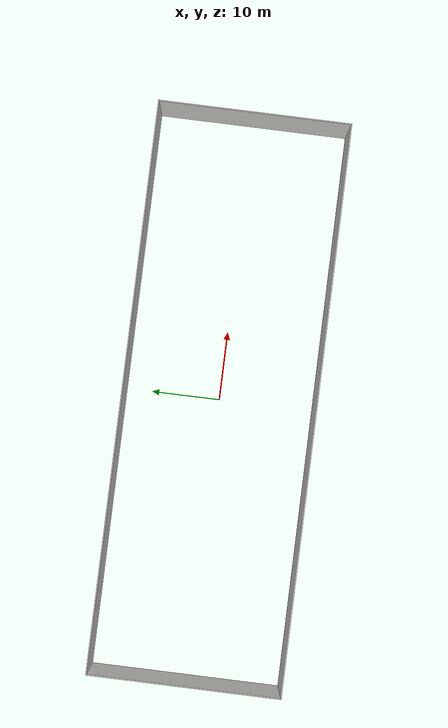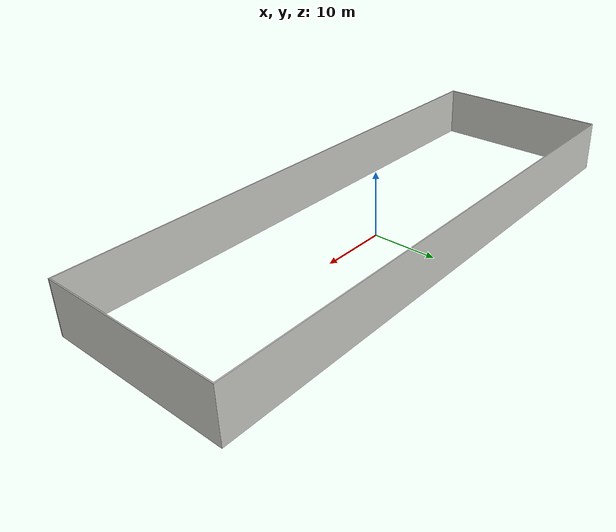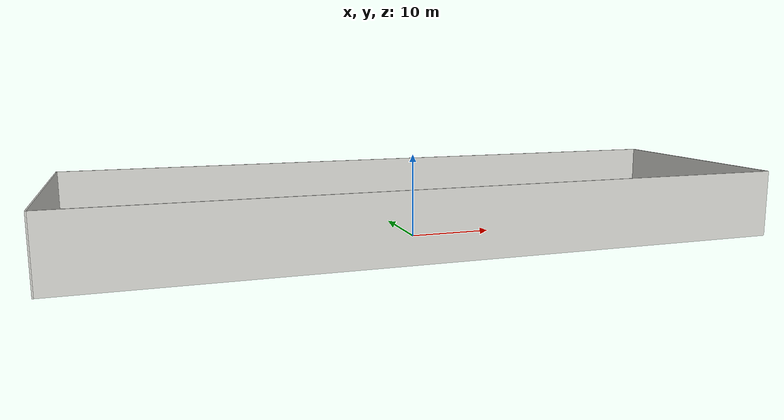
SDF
<?xml version='1.0'?>
<sdf version='1.7'>
  <model name='inespasa_large'>
    <pose>0.1 0 0 0 -0 0</pose>
    <link name='Wall_3'>
      <collision name='Wall_3_Collision'>
        <geometry>
          <box>
            <size>81.95 0.15 8</size>
          </box>
        </geometry>
        <pose>0 0 4 0 -0 0</pose>
      </collision>
      <visual name='Wall_3_Visual'>
        <pose>0 0 4 0 -0 0</pose>
        <geometry>
          <box>
            <size>81.95 0.15 8</size>
          </box>
        </geometry>
        <material>
          <script>
            <uri>file://media/materials/scripts/gazebo.material</uri>
            <name>Gazebo/CeilingTiled</name>
          </script>
          <ambient>1 1 1 1</ambient>
        </material>
        <meta>
          <layer>0</layer>
        </meta>
      </visual>
      <pose>-0 13.8 0 0 -0 0</pose>
    </link>
    <link name='Wall_4'>
      <collision name='Wall_4_Collision'>
        <geometry>
          <box>
            <size>27.75 0.15 8</size>
          </box>
        </geometry>
        <pose>0 0 4 0 -0 0</pose>
      </collision>
      <visual name='Wall_4_Visual'>
        <pose>0 0 4 0 -0 0</pose>
        <geometry>
          <box>
            <size>27.75 0.15 8</size>
          </box>
        </geometry>
        <material>
          <script>
            <uri>file://media/materials/scripts/gazebo.material</uri>
            <name>Gazebo/CeilingTiled</name>
          </script>
          <ambient>1 1 1 1</ambient>
        </material>
        <meta>
          <layer>0</layer>
        </meta>
      </visual>
      <pose>40.9 0 0 0 -0 -1.5708</pose>
    </link>
    <link name='Wall_6'>
      <collision name='Wall_6_Collision'>
        <geometry>
          <box>
            <size>81.95 0.15 8</size>
          </box>
        </geometry>
        <pose>0 0 4 0 -0 0</pose>
      </collision>
      <visual name='Wall_6_Visual'>
        <pose>0 0 4 0 -0 0</pose>
        <geometry>
          <box>
            <size>81.95 0.15 8</size>
          </box>
        </geometry>
        <material>
          <script>
            <uri>file://media/materials/scripts/gazebo.material</uri>
            <name>Gazebo/CeilingTiled</name>
          </script>
          <ambient>1 1 1 1</ambient>
        </material>
        <meta>
          <layer>0</layer>
        </meta>
      </visual>
      <pose>-0 -13.8 0 0 -0 3.14159</pose>
    </link>
    <link name='Wall_7'>
      <collision name='Wall_7_Collision'>
        <geometry>
          <box>
            <size>27.75 0.15 8</size>
          </box>
        </geometry>
        <pose>0 0 4 0 -0 0</pose>
      </collision>
      <visual name='Wall_7_Visual'>
        <pose>0 0 4 0 -0 0</pose>
        <geometry>
          <box>
            <size>27.75 0.15 8</size>
          </box>
        </geometry>
        <material>
          <script>
            <uri>file://media/materials/scripts/gazebo.material</uri>
            <name>Gazebo/CeilingTiled</name>
          </script>
          <ambient>1 1 1 1</ambient>
        </material>
        <meta>
          <layer>0</layer>
        </meta>
      </visual>
      <pose>-40.9 0 0 0 -0 1.5708</pose>
    </link>
    <static>1</static>
  </model>
</sdf>
